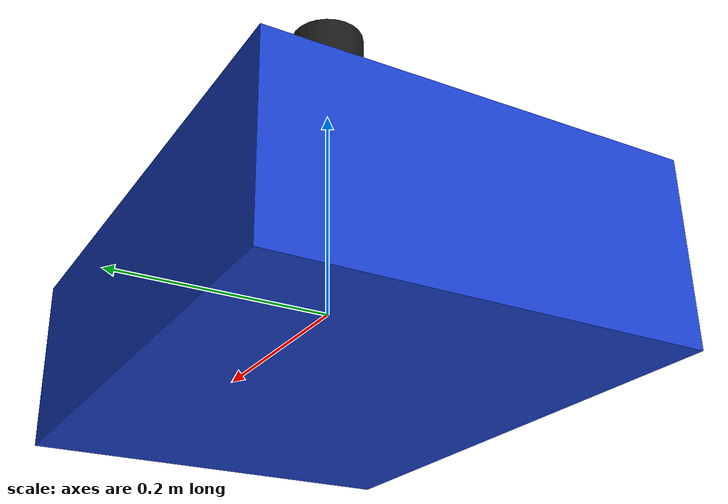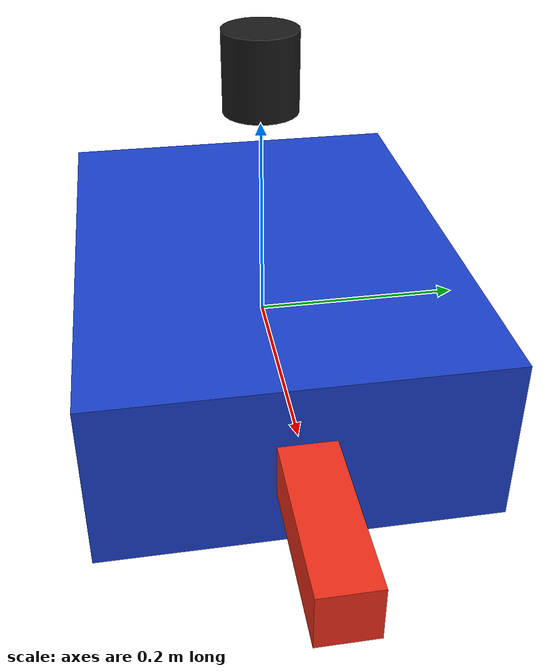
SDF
<?xml version="1.0"?>
<sdf version="1.6">
  <model name="uav1">
    <static>true</static>

    <link name="base_link">
      <inertial>
        <mass>1.5</mass>
        <inertia>
          <ixx>0.035</ixx>
          <ixy>0</ixy>
          <ixz>0</ixz>
          <iyy>0.035</iyy>
          <iyz>0</iyz>
          <izz>0.060</izz>
        </inertia>
      </inertial>

      <collision name="body_collision">
        <geometry>
          <box>
            <size>0.48 0.36 0.16</size>
          </box>
        </geometry>
      </collision>
      <visual name="body_visual">
        <geometry>
          <box>
            <size>0.48 0.36 0.16</size>
          </box>
        </geometry>
        <material>
          <ambient>0.08 0.18 0.55 1</ambient>
          <diffuse>0.10 0.25 0.80 1</diffuse>
        </material>
      </visual>

      <visual name="x_axis_marker">
        <pose>0.31 0 0 0 0 0</pose>
        <geometry>
          <box>
            <size>0.16 0.05 0.05</size>
          </box>
        </geometry>
        <material>
          <ambient>0.85 0.15 0.10 1</ambient>
          <diffuse>0.95 0.18 0.10 1</diffuse>
        </material>
      </visual>
    </link>

    <link name="mid360_link">
      <pose>0 0 0.25 0 0 0</pose>
      <gravity>false</gravity>
      <self_collide>false</self_collide>
      <inertial>
        <mass>0.265</mass>
        <inertia>
          <ixx>0.0008</ixx>
          <ixy>0</ixy>
          <ixz>0</ixz>
          <iyy>0.0008</iyy>
          <iyz>0</iyz>
          <izz>0.0008</izz>
        </inertia>
      </inertial>

      <!-- Visual-only sensor housing. Avoiding a housing collision prevents
           the multiray sensor from reporting its own mount. -->
      <visual name="mid360_visual">
        <geometry>
          <cylinder>
            <radius>0.035</radius>
            <length>0.075</length>
          </cylinder>
        </geometry>
        <material>
          <ambient>0.06 0.06 0.06 1</ambient>
          <diffuse>0.10 0.10 0.10 1</diffuse>
        </material>
      </visual>

      <sensor name="mid360_ray_sensor" type="ray">
        <pose>0 0 0 0 0 0</pose>
        <always_on>true</always_on>
        <update_rate>10</update_rate>
        <visualize>false</visualize>

        <plugin name="uav1_mid360_plugin"
                filename="liblivox_laser_simulation.so">
          <ray>
            <scan>
              <horizontal>
                <samples>100</samples>
                <resolution>1</resolution>
                <min_angle>-3.141592653589793</min_angle>
                <max_angle>3.141592653589793</max_angle>
              </horizontal>
              <vertical>
                <samples>50</samples>
                <resolution>1</resolution>
                <min_angle>-3.141592653589793</min_angle>
                <max_angle>3.141592653589793</max_angle>
              </vertical>
            </scan>
            <range>
              <min>0.1</min>
              <max>40.0</max>
              <resolution>0.01</resolution>
            </range>
            <noise>
              <type>gaussian</type>
              <mean>0.0</mean>
              <stddev>0.0</stddev>
            </noise>
          </ray>

          <!-- Topic tags remain relative to the observer namespace. -->
          <robotNamespace>/uav1</robotNamespace>
          <ros_topic>mid360/points_raw</ros_topic>
          <publish_ray_bundle>true</publish_ray_bundle>
          <ray_bundle_topic>mid360/rays_raw</ray_bundle_topic>
          <ray_diagnostics_topic>mid360/ray_source_diagnostics</ray_diagnostics_topic>

          <!-- The launch file supplies world -> uav1/fcu. The plugin publishes
               this fixed sensor mount on /tf_gazebo_static. -->
          <parentFrameName>uav1/fcu</parentFrameName>
          <frameName>uav1/mid360_link</frameName>
          <ray_bundle_frame>uav1/mid360_link</ray_bundle_frame>

          <visualize>false</visualize>
          <samples>20000</samples>
          <downsample>1</downsample>
          <csv_file_name>mid360-real-centr.csv</csv_file_name>
          <publish_pointcloud_type>2</publish_pointcloud_type>
          <use_csv_time>true</use_csv_time>
          <ray_point_rate>200000</ray_point_rate>
          <ray_time_geometry_mode>snapshot</ray_time_geometry_mode>
        </plugin>
      </sensor>
    </link>

    <joint name="mid360_fixed_joint" type="fixed">
      <parent>base_link</parent>
      <child>mid360_link</child>
    </joint>
  </model>
</sdf>
